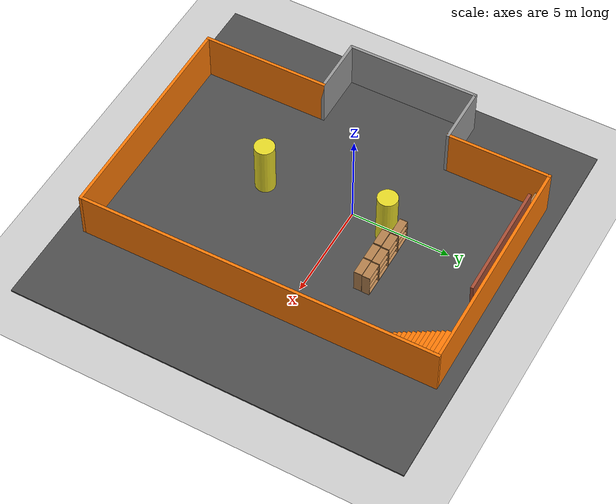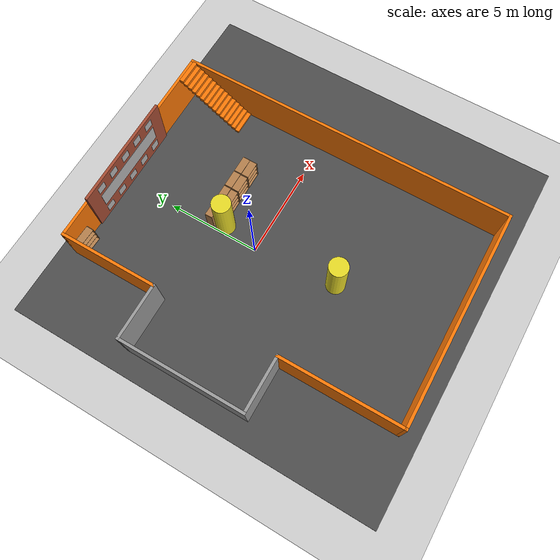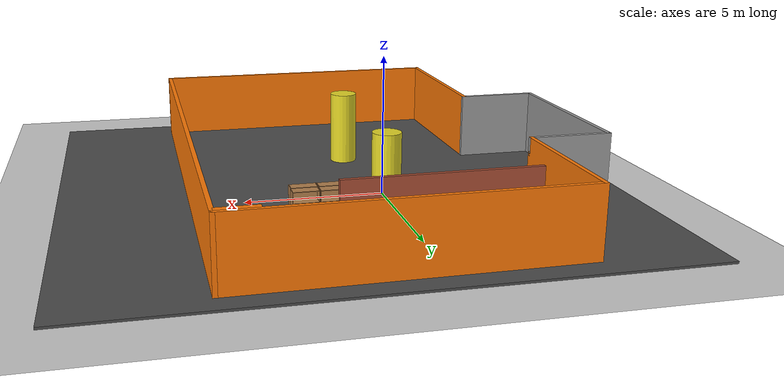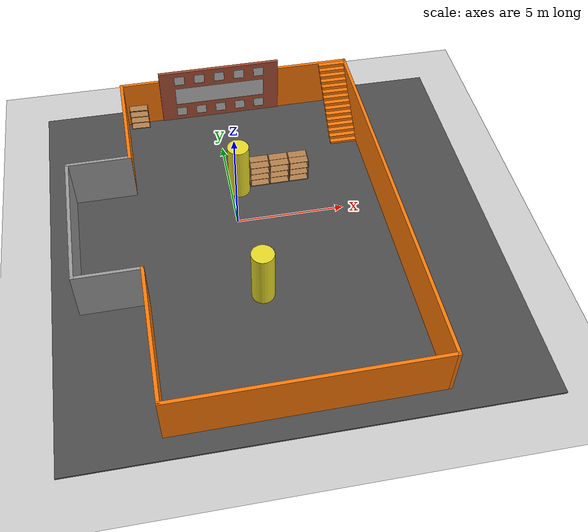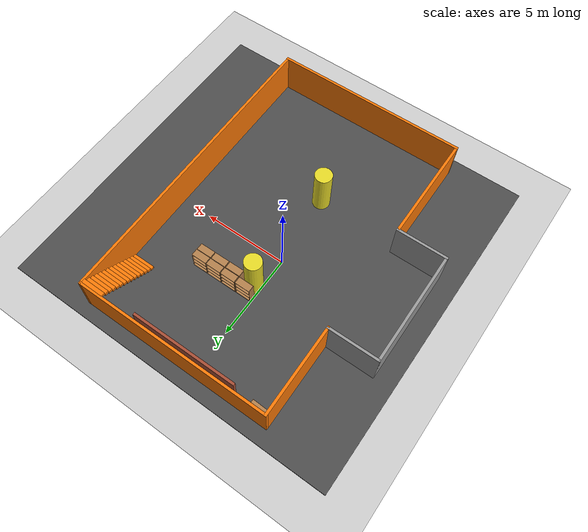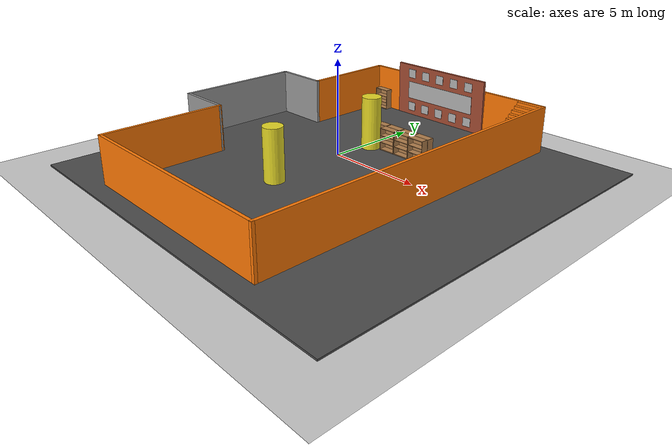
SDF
<sdf version="1.6">
 <world name="default">
  <model name="ground_plane">
   <static>1</static>
   <link name="link">
    <collision name="collision">
     <geometry><plane><normal>0 0 1</normal><size>100 100</size></plane></geometry>
     <surface>
      <contact><collide_bitmask>65535</collide_bitmask></contact>
      <friction><ode><mu>100</mu><mu2>50</mu2></ode></friction>
     </surface>
    </collision>
    <visual name="visual">
     <cast_shadows>0</cast_shadows>
     <geometry><plane><normal>0 0 1</normal><size>100 100</size></plane></geometry>
     <material>
      <script><uri>file://media/materials/scripts/gazebo.material</uri><name>Gazebo/Grey</name></script>
     </material>
    </visual>
   </link>
  </model>
  <model name="room">
   <pose>-0.256989 -1.30072 0 0 0 -1.56463</pose>
   <link name="Wall_0">
    <collision name="Wall_0_Collision">
     <geometry><box><size>3 0.15 2.5</size></box></geometry>
     <pose>0 0 1.25 0 -0 0</pose>
    </collision>
    <visual name="Wall_0_Visual">
     <pose>0 0 1.25 0 -0 0</pose>
     <geometry><box><size>3 0.15 2.5</size></box></geometry>
     <material>
      <script><uri>file://media/materials/scripts/gazebo.material</uri><name>Gazebo/Grey</name></script>
      <ambient>1 1 1 1</ambient>
     </material>
     <meta><layer>0</layer></meta>
    </visual>
    <pose>-3.9 -5.675 0 0 -0 -1.5708</pose>
   </link>
   <link name="Wall_1">
    <collision name="Wall_1_Collision">
     <geometry><box><size>6.75 0.15 2.5</size></box></geometry>
     <pose>0 0 1.25 0 -0 0</pose>
    </collision>
    <visual name="Wall_1_Visual">
     <pose>0 0 1.25 0 -0 0</pose>
     <geometry><box><size>6.75 0.15 2.5</size></box></geometry>
     <material>
      <script><uri>file://media/materials/scripts/gazebo.material</uri><name>Gazebo/Grey</name></script>
      <ambient>1 1 1 1</ambient>
     </material>
     <meta><layer>0</layer></meta>
    </visual>
    <pose>-0.6 -7.1 0 0 -0 0</pose>
   </link>
   <link name="Wall_2">
    <collision name="Wall_2_Collision">
     <geometry><box><size>3 0.15 2.5</size></box></geometry>
     <pose>0 0 1.25 0 -0 0</pose>
    </collision>
    <visual name="Wall_2_Visual">
     <pose>0 0 1.25 0 -0 0</pose>
     <geometry><box><size>3 0.15 2.5</size></box></geometry>
     <material>
      <script><uri>file://media/materials/scripts/gazebo.material</uri><name>Gazebo/Grey</name></script>
      <ambient>1 1 1 1</ambient>
     </material>
     <meta><layer>0</layer></meta>
    </visual>
    <pose>2.7 -5.675 0 0 -0 1.5708</pose>
   </link>
   <link name="Wall_3">
    <collision name="Wall_3_Collision">
     <geometry><box><size>6.5 0.15 2.5</size></box></geometry>
     <pose>0 0 1.25 0 -0 0</pose>
    </collision>
    <visual name="Wall_3_Visual">
     <pose>0 0 1.25 0 -0 0</pose>
     <geometry><box><size>6.5 0.15 2.5</size></box></geometry>
     <material>
      <script><uri>file://media/materials/scripts/gazebo.material</uri><name>Gazebo/Grey</name></script>
      <ambient>0.996078 0.47451 0.0196078 1</ambient>
     </material>
     <meta><layer>0</layer></meta>
    </visual>
    <pose>5.875 -4.25 0 0 -0 0</pose>
   </link>
   <link name="Wall_5">
    <collision name="Wall_5_Collision">
     <geometry><box><size>11.5 0.15 2.5</size></box></geometry>
     <pose>0 0 1.25 0 -0 0</pose>
    </collision>
    <visual name="Wall_5_Visual">
     <pose>0 0 1.25 0 -0 0</pose>
     <geometry><box><size>11.5 0.15 2.5</size></box></geometry>
     <material>
      <script><uri>file://media/materials/scripts/gazebo.material</uri><name>Gazebo/Grey</name></script>
      <ambient>0.996078 0.47451 0.0196078 1</ambient>
     </material>
     <meta><layer>0</layer></meta>
    </visual>
    <pose>9.05 1.425 0 0 -0 1.5708</pose>
   </link>
   <link name="Wall_6">
    <collision name="Wall_6_Collision">
     <geometry><box><size>18.25 0.15 2.5</size></box></geometry>
     <pose>0 0 1.25 0 -0 0</pose>
    </collision>
    <visual name="Wall_6_Visual">
     <pose>0 0 1.25 0 -0 0</pose>
     <geometry><box><size>18.25 0.15 2.5</size></box></geometry>
     <material>
      <script><uri>file://media/materials/scripts/gazebo.material</uri><name>Gazebo/Grey</name></script>
      <ambient>0.996078 0.47451 0.0196078 1</ambient>
     </material>
     <meta><layer>0</layer></meta>
    </visual>
    <pose>0 7.1 0 0 -0 3.14159</pose>
   </link>
   <link name="Wall_7">
    <collision name="Wall_7_Collision">
     <geometry><box><size>11.5 0.15 2.5</size></box></geometry>
     <pose>0 0 1.25 0 -0 0</pose>
    </collision>
    <visual name="Wall_7_Visual">
     <pose>0 0 1.25 0 -0 0</pose>
     <geometry><box><size>11.5 0.15 2.5</size></box></geometry>
     <material>
      <script><uri>file://media/materials/scripts/gazebo.material</uri><name>Gazebo/Grey</name></script>
      <ambient>0.996078 0.47451 0.0196078 1</ambient>
     </material>
     <meta><layer>0</layer></meta>
    </visual>
    <pose>-9.05 1.425 0 0 -0 -1.5708</pose>
   </link>
   <link name="Wall_8">
    <collision name="Wall_8_Collision">
     <geometry><box><size>5.3 0.15 2.5</size></box></geometry>
     <pose>0 0 1.25 0 -0 0</pose>
    </collision>
    <visual name="Wall_8_Visual">
     <pose>0 0 1.25 0 -0 0</pose>
     <geometry><box><size>5.3 0.15 2.5</size></box></geometry>
     <material>
      <script><uri>file://media/materials/scripts/gazebo.material</uri><name>Gazebo/Grey</name></script>
      <ambient>0.996078 0.47451 0.0196078 1</ambient>
     </material>
     <meta><layer>0</layer></meta>
    </visual>
    <pose>-6.475 -4.25 0 0 -0 0</pose>
   </link>
   <static>1</static>
  </model>
  <model name="wall_with_num">
   <pose>0.301724 7.62144 1.58055 -0.028957 -0.000253 -3.13441</pose>
   <static>1</static>
   <link name="wall_link">
    <inertial><mass>1</mass></inertial>
    <collision name="my_collision"><geometry><box><size>6 0.15 3</size></box></geometry></collision>
    <visual name="my_visual">
     <geometry><box><size>6 0.15 3</size></box></geometry>
     <material>
      <script><uri>file://media/materials/scripts/gazebo.material</uri><name>Gazebo/Bricks</name></script>
      <ambient>1 1 1 1</ambient>
     </material>
    </visual>
   </link>
   <link name="logo">
    <pose>-0 0.07 -0 0 -0 0</pose>
    <collision name="collision"><geometry><box><size>0.5 0.01 0.5</size></box></geometry></collision>
    <visual name="visual">
     <cast_shadows>0</cast_shadows>
     <geometry><box><size>4.5 0.03 1</size></box></geometry>
     <material>
      <script>
       <uri>model://logo_ground/materials/scripts</uri>
       <uri>model://logo_ground/materials/textures</uri>
       <name>Cube/logo_ground</name>
      </script>
     </material>
    </visual>
   </link>
   <link name="num_0">
    <pose>2 0.07 1 0 -0 0</pose>
    <collision name="collision"><geometry><box><size>0.5 0.01 0.5</size></box></geometry></collision>
    <visual name="visual">
     <cast_shadows>0</cast_shadows>
     <geometry><box><size>0.5 0.03 0.5</size></box></geometry>
     <material>
      <script>
       <uri>model://wall_with_num/materials/scripts/numbers.material</uri>
       <uri>model://wall_with_num/materials/textures/</uri>
       <name>Numbers/0</name>
      </script>
     </material>
    </visual>
   </link>
   <link name="num_1">
    <pose>1 0.07 1 0 -0 0</pose>
    <collision name="collision"><geometry><box><size>0.5 0.01 0.5</size></box></geometry></collision>
    <visual name="visual">
     <cast_shadows>0</cast_shadows>
     <geometry><box><size>0.5 0.03 0.5</size></box></geometry>
     <material>
      <script>
       <uri>model://wall_with_num/materials/scripts/numbers.material</uri>
       <uri>model://wall_with_num/materials/textures/</uri>
       <name>Numbers/1</name>
      </script>
     </material>
    </visual>
   </link>
   <link name="num_2">
    <pose>0 0.07 1 0 -0 0</pose>
    <collision name="collision"><geometry><box><size>0.5 0.01 0.5</size></box></geometry></collision>
    <visual name="visual">
     <cast_shadows>0</cast_shadows>
     <geometry><box><size>0.5 0.03 0.5</size></box></geometry>
     <material>
      <script>
       <uri>model://wall_with_num/materials/scripts/numbers.material</uri>
       <uri>model://wall_with_num/materials/textures/</uri>
       <name>Numbers/2</name>
      </script>
     </material>
    </visual>
   </link>
   <link name="num_3">
    <pose>-1 0.07 1 0 -0 0</pose>
    <collision name="collision"><geometry><box><size>0.5 0.01 0.5</size></box></geometry></collision>
    <visual name="visual">
     <cast_shadows>0</cast_shadows>
     <geometry><box><size>0.5 0.03 0.5</size></box></geometry>
     <material>
      <script>
       <uri>model://wall_with_num/materials/scripts/numbers.material</uri>
       <uri>model://wall_with_num/materials/textures/</uri>
       <name>Numbers/3</name>
      </script>
     </material>
    </visual>
   </link>
   <link name="num_4">
    <pose>-2 0.07 1 0 -0 0</pose>
    <collision name="collision"><geometry><box><size>0.5 0.01 0.5</size></box></geometry></collision>
    <visual name="visual">
     <cast_shadows>0</cast_shadows>
     <geometry><box><size>0.5 0.03 0.5</size></box></geometry>
     <material>
      <script>
       <uri>model://wall_with_num/materials/scripts/numbers.material</uri>
       <uri>model://wall_with_num/materials/textures/</uri>
       <name>Numbers/4</name>
      </script>
     </material>
    </visual>
   </link>
   <link name="num_5">
    <pose>2 0.07 -1 0 -0 0</pose>
    <collision name="collision"><geometry><box><size>0.5 0.01 0.5</size></box></geometry></collision>
    <visual name="visual">
     <cast_shadows>0</cast_shadows>
     <geometry><box><size>0.5 0.03 0.5</size></box></geometry>
     <material>
      <script>
       <uri>model://wall_with_num/materials/scripts/numbers.material</uri>
       <uri>model://wall_with_num/materials/textures/</uri>
       <name>Numbers/5</name>
      </script>
     </material>
    </visual>
   </link>
   <link name="num_6">
    <pose>1 0.07 -1 0 -0 0</pose>
    <collision name="collision"><geometry><box><size>0.5 0.01 0.5</size></box></geometry></collision>
    <visual name="visual">
     <cast_shadows>0</cast_shadows>
     <geometry><box><size>0.5 0.03 0.5</size></box></geometry>
     <material>
      <script>
       <uri>model://wall_with_num/materials/scripts/numbers.material</uri>
       <uri>model://wall_with_num/materials/textures/</uri>
       <name>Numbers/6</name>
      </script>
     </material>
    </visual>
   </link>
   <link name="num_7">
    <pose>0 0.07 -1 0 -0 0</pose>
    <collision name="collision"><geometry><box><size>0.5 0.01 0.5</size></box></geometry></collision>
    <visual name="visual">
     <cast_shadows>0</cast_shadows>
     <geometry><box><size>0.5 0.03 0.5</size></box></geometry>
     <material>
      <script>
       <uri>model://wall_with_num/materials/scripts/numbers.material</uri>
       <uri>model://wall_with_num/materials/textures/</uri>
       <name>Numbers/7</name>
      </script>
     </material>
    </visual>
   </link>
   <link name="num_8">
    <pose>-1 0.07 -1 0 -0 0</pose>
    <collision name="collision"><geometry><box><size>0.5 0.01 0.5</size></box></geometry></collision>
    <visual name="visual">
     <cast_shadows>0</cast_shadows>
     <geometry><box><size>0.5 0.03 0.5</size></box></geometry>
     <material>
      <script>
       <uri>model://wall_with_num/materials/scripts/numbers.material</uri>
       <uri>model://wall_with_num/materials/textures/</uri>
       <name>Numbers/8</name>
      </script>
     </material>
    </visual>
   </link>
   <link name="num_9">
    <pose>-2 0.07 -1 0 -0 0</pose>
    <collision name="collision"><geometry><box><size>0.5 0.01 0.5</size></box></geometry></collision>
    <visual name="visual">
     <cast_shadows>0</cast_shadows>
     <geometry><box><size>0.5 0.03 0.5</size></box></geometry>
     <material>
      <script>
       <uri>model://wall_with_num/materials/scripts/numbers.material</uri>
       <uri>model://wall_with_num/materials/textures/</uri>
       <name>Numbers/9</name>
      </script>
     </material>
    </visual>
   </link>
  </model>
  <model name="stone_10_2_5_1cm">
   <link name="link">
    <pose>0 0 0.005 0 -0 0</pose>
    <inertial>
     <mass>0.0628</mass>
     <inertia>
      <ixx>3.79417e-06</ixx>
      <ixy>0</ixy>
      <ixz>0</ixz>
      <iyy>5.28567e-05</iyy>
      <iyz>0</iyz>
      <izz>5.56042e-05</izz>
     </inertia>
    </inertial>
    <collision name="collision">
     <geometry><box><size>0.1 0.025 0.01</size></box></geometry>
     <surface>
      <contact>
       <poissons_ratio>0.15</poissons_ratio>
       <elastic_modulus>8e+10</elastic_modulus>
       <ode><kp>100000</kp><kd>100</kd><max_vel>100</max_vel><min_depth>0.001</min_depth></ode>
      </contact>
      <friction>
       <torsional>
        <coefficient>1</coefficient>
        <use_patch_radius>0</use_patch_radius>
        <surface_radius>0.01</surface_radius>
       </torsional>
      </friction>
     </surface>
    </collision>
    <visual name="visual">
     <geometry><box><size>0.1 0.025 0.01</size></box></geometry>
     <material>
      <script><uri>file://media/materials/scripts/gazebo.material</uri><name>Gazebo/Grey</name></script>
     </material>
    </visual>
   </link>
   <pose>0 0 -0.005 0 -0 0</pose>
  </model>
  <model name="bookshelf_clone_clone_1">
   <static>1</static>
   <link name="link">
    <inertial><mass>1</mass></inertial>
    <collision name="back">
     <pose>0 0.005 0.6 0 -0 0</pose>
     <geometry><box><size>0.9 0.01 1.2</size></box></geometry>
    </collision>
    <visual name="visual1">
     <pose>0 0.005 0.6 0 -0 0</pose>
     <geometry><box><size>0.9 0.01 1.2</size></box></geometry>
     <material>
      <script><uri>file://media/materials/scripts/gazebo.material</uri><name>Gazebo/Wood</name></script>
     </material>
    </visual>
    <collision name="left_side">
     <pose>0.45 -0.195 0.6 0 -0 0</pose>
     <geometry><box><size>0.02 0.4 1.2</size></box></geometry>
    </collision>
    <visual name="visual2">
     <pose>0.45 -0.195 0.6 0 -0 0</pose>
     <geometry><box><size>0.02 0.4 1.2</size></box></geometry>
     <material>
      <script><uri>file://media/materials/scripts/gazebo.material</uri><name>Gazebo/Wood</name></script>
     </material>
    </visual>
    <collision name="right_side">
     <pose>-0.45 -0.195 0.6 0 -0 0</pose>
     <geometry><box><size>0.02 0.4 1.2</size></box></geometry>
    </collision>
    <visual name="visual3">
     <pose>-0.45 -0.195 0.6 0 -0 0</pose>
     <geometry><box><size>0.02 0.4 1.2</size></box></geometry>
     <material>
      <script><uri>file://media/materials/scripts/gazebo.material</uri><name>Gazebo/Wood</name></script>
     </material>
    </visual>
    <collision name="bottom">
     <pose>0 -0.195 0.03 0 -0 0</pose>
     <geometry><box><size>0.88 0.4 0.06</size></box></geometry>
    </collision>
    <visual name="visual4">
     <pose>0 -0.195 0.03 0 -0 0</pose>
     <geometry><box><size>0.88 0.4 0.06</size></box></geometry>
     <material>
      <script><uri>file://media/materials/scripts/gazebo.material</uri><name>Gazebo/Wood</name></script>
     </material>
    </visual>
    <collision name="top">
     <pose>0 -0.195 1.19 0 -0 0</pose>
     <geometry><box><size>0.88 0.4 0.02</size></box></geometry>
    </collision>
    <visual name="visual5">
     <pose>0 -0.195 1.19 0 -0 0</pose>
     <geometry><box><size>0.88 0.4 0.02</size></box></geometry>
     <material>
      <script><uri>file://media/materials/scripts/gazebo.material</uri><name>Gazebo/Wood</name></script>
     </material>
    </visual>
    <collision name="low_shelf">
     <pose>0 -0.195 0.43 0 -0 0</pose>
     <geometry><box><size>0.88 0.4 0.02</size></box></geometry>
    </collision>
    <visual name="visual6">
     <pose>0 -0.195 0.43 0 -0 0</pose>
     <geometry><box><size>0.88 0.4 0.02</size></box></geometry>
     <material>
      <script><uri>file://media/materials/scripts/gazebo.material</uri><name>Gazebo/Wood</name></script>
     </material>
    </visual>
    <collision name="high_shelf">
     <pose>0 -0.195 0.8 0 -0 0</pose>
     <geometry><box><size>0.88 0.4 0.02</size></box></geometry>
    </collision>
    <visual name="visual7">
     <pose>0 -0.195 0.8 0 -0 0</pose>
     <geometry><box><size>0.88 0.4 0.02</size></box></geometry>
     <material>
      <script><uri>file://media/materials/scripts/gazebo.material</uri><name>Gazebo/Wood</name></script>
     </material>
    </visual>
   </link>
   <pose>-3.87786 7.61269 0.027497 0 0 -0.028777</pose>
  </model>
  <model name="bookshelf_clone_clone_clone_0">
   <static>1</static>
   <link name="link">
    <inertial><mass>1</mass></inertial>
    <collision name="back">
     <pose>0 0.005 0.6 0 -0 0</pose>
     <geometry><box><size>0.9 0.01 1.2</size></box></geometry>
    </collision>
    <visual name="visual1">
     <pose>0 0.005 0.6 0 -0 0</pose>
     <geometry><box><size>0.9 0.01 1.2</size></box></geometry>
     <material>
      <script><uri>file://media/materials/scripts/gazebo.material</uri><name>Gazebo/Wood</name></script>
     </material>
    </visual>
    <collision name="left_side">
     <pose>0.45 -0.195 0.6 0 -0 0</pose>
     <geometry><box><size>0.02 0.4 1.2</size></box></geometry>
    </collision>
    <visual name="visual2">
     <pose>0.45 -0.195 0.6 0 -0 0</pose>
     <geometry><box><size>0.02 0.4 1.2</size></box></geometry>
     <material>
      <script><uri>file://media/materials/scripts/gazebo.material</uri><name>Gazebo/Wood</name></script>
     </material>
    </visual>
    <collision name="right_side">
     <pose>-0.45 -0.195 0.6 0 -0 0</pose>
     <geometry><box><size>0.02 0.4 1.2</size></box></geometry>
    </collision>
    <visual name="visual3">
     <pose>-0.45 -0.195 0.6 0 -0 0</pose>
     <geometry><box><size>0.02 0.4 1.2</size></box></geometry>
     <material>
      <script><uri>file://media/materials/scripts/gazebo.material</uri><name>Gazebo/Wood</name></script>
     </material>
    </visual>
    <collision name="bottom">
     <pose>0 -0.195 0.03 0 -0 0</pose>
     <geometry><box><size>0.88 0.4 0.06</size></box></geometry>
    </collision>
    <visual name="visual4">
     <pose>0 -0.195 0.03 0 -0 0</pose>
     <geometry><box><size>0.88 0.4 0.06</size></box></geometry>
     <material>
      <script><uri>file://media/materials/scripts/gazebo.material</uri><name>Gazebo/Wood</name></script>
     </material>
    </visual>
    <collision name="top">
     <pose>0 -0.195 1.19 0 -0 0</pose>
     <geometry><box><size>0.88 0.4 0.02</size></box></geometry>
    </collision>
    <visual name="visual5">
     <pose>0 -0.195 1.19 0 -0 0</pose>
     <geometry><box><size>0.88 0.4 0.02</size></box></geometry>
     <material>
      <script><uri>file://media/materials/scripts/gazebo.material</uri><name>Gazebo/Wood</name></script>
     </material>
    </visual>
    <collision name="low_shelf">
     <pose>0 -0.195 0.43 0 -0 0</pose>
     <geometry><box><size>0.88 0.4 0.02</size></box></geometry>
    </collision>
    <visual name="visual6">
     <pose>0 -0.195 0.43 0 -0 0</pose>
     <geometry><box><size>0.88 0.4 0.02</size></box></geometry>
     <material>
      <script><uri>file://media/materials/scripts/gazebo.material</uri><name>Gazebo/Wood</name></script>
     </material>
    </visual>
    <collision name="high_shelf">
     <pose>0 -0.195 0.8 0 -0 0</pose>
     <geometry><box><size>0.88 0.4 0.02</size></box></geometry>
    </collision>
    <visual name="visual7">
     <pose>0 -0.195 0.8 0 -0 0</pose>
     <geometry><box><size>0.88 0.4 0.02</size></box></geometry>
     <material>
      <script><uri>file://media/materials/scripts/gazebo.material</uri><name>Gazebo/Wood</name></script>
     </material>
    </visual>
   </link>
   <pose>0.506573 2.48359 0.027497 0 0 -3.13702</pose>
  </model>
  <model name="bookshelf_clone_clone_clone_1">
   <static>1</static>
   <link name="link">
    <inertial><mass>1</mass></inertial>
    <collision name="back">
     <pose>0 0.005 0.6 0 -0 0</pose>
     <geometry><box><size>0.9 0.01 1.2</size></box></geometry>
    </collision>
    <visual name="visual1">
     <pose>0 0.005 0.6 0 -0 0</pose>
     <geometry><box><size>0.9 0.01 1.2</size></box></geometry>
     <material>
      <script><uri>file://media/materials/scripts/gazebo.material</uri><name>Gazebo/Wood</name></script>
     </material>
    </visual>
    <collision name="left_side">
     <pose>0.45 -0.195 0.6 0 -0 0</pose>
     <geometry><box><size>0.02 0.4 1.2</size></box></geometry>
    </collision>
    <visual name="visual2">
     <pose>0.45 -0.195 0.6 0 -0 0</pose>
     <geometry><box><size>0.02 0.4 1.2</size></box></geometry>
     <material>
      <script><uri>file://media/materials/scripts/gazebo.material</uri><name>Gazebo/Wood</name></script>
     </material>
    </visual>
    <collision name="right_side">
     <pose>-0.45 -0.195 0.6 0 -0 0</pose>
     <geometry><box><size>0.02 0.4 1.2</size></box></geometry>
    </collision>
    <visual name="visual3">
     <pose>-0.45 -0.195 0.6 0 -0 0</pose>
     <geometry><box><size>0.02 0.4 1.2</size></box></geometry>
     <material>
      <script><uri>file://media/materials/scripts/gazebo.material</uri><name>Gazebo/Wood</name></script>
     </material>
    </visual>
    <collision name="bottom">
     <pose>0 -0.195 0.03 0 -0 0</pose>
     <geometry><box><size>0.88 0.4 0.06</size></box></geometry>
    </collision>
    <visual name="visual4">
     <pose>0 -0.195 0.03 0 -0 0</pose>
     <geometry><box><size>0.88 0.4 0.06</size></box></geometry>
     <material>
      <script><uri>file://media/materials/scripts/gazebo.material</uri><name>Gazebo/Wood</name></script>
     </material>
    </visual>
    <collision name="top">
     <pose>0 -0.195 1.19 0 -0 0</pose>
     <geometry><box><size>0.88 0.4 0.02</size></box></geometry>
    </collision>
    <visual name="visual5">
     <pose>0 -0.195 1.19 0 -0 0</pose>
     <geometry><box><size>0.88 0.4 0.02</size></box></geometry>
     <material>
      <script><uri>file://media/materials/scripts/gazebo.material</uri><name>Gazebo/Wood</name></script>
     </material>
    </visual>
    <collision name="low_shelf">
     <pose>0 -0.195 0.43 0 -0 0</pose>
     <geometry><box><size>0.88 0.4 0.02</size></box></geometry>
    </collision>
    <visual name="visual6">
     <pose>0 -0.195 0.43 0 -0 0</pose>
     <geometry><box><size>0.88 0.4 0.02</size></box></geometry>
     <material>
      <script><uri>file://media/materials/scripts/gazebo.material</uri><name>Gazebo/Wood</name></script>
     </material>
    </visual>
    <collision name="high_shelf">
     <pose>0 -0.195 0.8 0 -0 0</pose>
     <geometry><box><size>0.88 0.4 0.02</size></box></geometry>
    </collision>
    <visual name="visual7">
     <pose>0 -0.195 0.8 0 -0 0</pose>
     <geometry><box><size>0.88 0.4 0.02</size></box></geometry>
     <material>
      <script><uri>file://media/materials/scripts/gazebo.material</uri><name>Gazebo/Wood</name></script>
     </material>
    </visual>
   </link>
   <pose>3.3308 2.50364 0.027497 0 0 -3.13702</pose>
  </model>
  <model name="bookshelf_clone_clone_clone_1_clone">
   <static>1</static>
   <link name="link">
    <inertial><mass>1</mass></inertial>
    <collision name="back">
     <pose>0 0.005 0.6 0 -0 0</pose>
     <geometry><box><size>0.9 0.01 1.2</size></box></geometry>
    </collision>
    <visual name="visual1">
     <pose>0 0.005 0.6 0 -0 0</pose>
     <geometry><box><size>0.9 0.01 1.2</size></box></geometry>
     <material>
      <script><uri>file://media/materials/scripts/gazebo.material</uri><name>Gazebo/Wood</name></script>
     </material>
    </visual>
    <collision name="left_side">
     <pose>0.45 -0.195 0.6 0 -0 0</pose>
     <geometry><box><size>0.02 0.4 1.2</size></box></geometry>
    </collision>
    <visual name="visual2">
     <pose>0.45 -0.195 0.6 0 -0 0</pose>
     <geometry><box><size>0.02 0.4 1.2</size></box></geometry>
     <material>
      <script><uri>file://media/materials/scripts/gazebo.material</uri><name>Gazebo/Wood</name></script>
     </material>
    </visual>
    <collision name="right_side">
     <pose>-0.45 -0.195 0.6 0 -0 0</pose>
     <geometry><box><size>0.02 0.4 1.2</size></box></geometry>
    </collision>
    <visual name="visual3">
     <pose>-0.45 -0.195 0.6 0 -0 0</pose>
     <geometry><box><size>0.02 0.4 1.2</size></box></geometry>
     <material>
      <script><uri>file://media/materials/scripts/gazebo.material</uri><name>Gazebo/Wood</name></script>
     </material>
    </visual>
    <collision name="bottom">
     <pose>0 -0.195 0.03 0 -0 0</pose>
     <geometry><box><size>0.88 0.4 0.06</size></box></geometry>
    </collision>
    <visual name="visual4">
     <pose>0 -0.195 0.03 0 -0 0</pose>
     <geometry><box><size>0.88 0.4 0.06</size></box></geometry>
     <material>
      <script><uri>file://media/materials/scripts/gazebo.material</uri><name>Gazebo/Wood</name></script>
     </material>
    </visual>
    <collision name="top">
     <pose>0 -0.195 1.19 0 -0 0</pose>
     <geometry><box><size>0.88 0.4 0.02</size></box></geometry>
    </collision>
    <visual name="visual5">
     <pose>0 -0.195 1.19 0 -0 0</pose>
     <geometry><box><size>0.88 0.4 0.02</size></box></geometry>
     <material>
      <script><uri>file://media/materials/scripts/gazebo.material</uri><name>Gazebo/Wood</name></script>
     </material>
    </visual>
    <collision name="low_shelf">
     <pose>0 -0.195 0.43 0 -0 0</pose>
     <geometry><box><size>0.88 0.4 0.02</size></box></geometry>
    </collision>
    <visual name="visual6">
     <pose>0 -0.195 0.43 0 -0 0</pose>
     <geometry><box><size>0.88 0.4 0.02</size></box></geometry>
     <material>
      <script><uri>file://media/materials/scripts/gazebo.material</uri><name>Gazebo/Wood</name></script>
     </material>
    </visual>
    <collision name="high_shelf">
     <pose>0 -0.195 0.8 0 -0 0</pose>
     <geometry><box><size>0.88 0.4 0.02</size></box></geometry>
    </collision>
    <visual name="visual7">
     <pose>0 -0.195 0.8 0 -0 0</pose>
     <geometry><box><size>0.88 0.4 0.02</size></box></geometry>
     <material>
      <script><uri>file://media/materials/scripts/gazebo.material</uri><name>Gazebo/Wood</name></script>
     </material>
    </visual>
   </link>
   <pose>2.39819 2.50195 0.027497 0 0 -3.13702</pose>
  </model>
  <model name="bookshelf_clone_clone_clone_1_clone_0">
   <static>1</static>
   <link name="link">
    <inertial><mass>1</mass></inertial>
    <collision name="back">
     <pose>0 0.005 0.6 0 -0 0</pose>
     <geometry><box><size>0.9 0.01 1.2</size></box></geometry>
    </collision>
    <visual name="visual1">
     <pose>0 0.005 0.6 0 -0 0</pose>
     <geometry><box><size>0.9 0.01 1.2</size></box></geometry>
     <material>
      <script><uri>file://media/materials/scripts/gazebo.material</uri><name>Gazebo/Wood</name></script>
     </material>
    </visual>
    <collision name="left_side">
     <pose>0.45 -0.195 0.6 0 -0 0</pose>
     <geometry><box><size>0.02 0.4 1.2</size></box></geometry>
    </collision>
    <visual name="visual2">
     <pose>0.45 -0.195 0.6 0 -0 0</pose>
     <geometry><box><size>0.02 0.4 1.2</size></box></geometry>
     <material>
      <script><uri>file://media/materials/scripts/gazebo.material</uri><name>Gazebo/Wood</name></script>
     </material>
    </visual>
    <collision name="right_side">
     <pose>-0.45 -0.195 0.6 0 -0 0</pose>
     <geometry><box><size>0.02 0.4 1.2</size></box></geometry>
    </collision>
    <visual name="visual3">
     <pose>-0.45 -0.195 0.6 0 -0 0</pose>
     <geometry><box><size>0.02 0.4 1.2</size></box></geometry>
     <material>
      <script><uri>file://media/materials/scripts/gazebo.material</uri><name>Gazebo/Wood</name></script>
     </material>
    </visual>
    <collision name="bottom">
     <pose>0 -0.195 0.03 0 -0 0</pose>
     <geometry><box><size>0.88 0.4 0.06</size></box></geometry>
    </collision>
    <visual name="visual4">
     <pose>0 -0.195 0.03 0 -0 0</pose>
     <geometry><box><size>0.88 0.4 0.06</size></box></geometry>
     <material>
      <script><uri>file://media/materials/scripts/gazebo.material</uri><name>Gazebo/Wood</name></script>
     </material>
    </visual>
    <collision name="top">
     <pose>0 -0.195 1.19 0 -0 0</pose>
     <geometry><box><size>0.88 0.4 0.02</size></box></geometry>
    </collision>
    <visual name="visual5">
     <pose>0 -0.195 1.19 0 -0 0</pose>
     <geometry><box><size>0.88 0.4 0.02</size></box></geometry>
     <material>
      <script><uri>file://media/materials/scripts/gazebo.material</uri><name>Gazebo/Wood</name></script>
     </material>
    </visual>
    <collision name="low_shelf">
     <pose>0 -0.195 0.43 0 -0 0</pose>
     <geometry><box><size>0.88 0.4 0.02</size></box></geometry>
    </collision>
    <visual name="visual6">
     <pose>0 -0.195 0.43 0 -0 0</pose>
     <geometry><box><size>0.88 0.4 0.02</size></box></geometry>
     <material>
      <script><uri>file://media/materials/scripts/gazebo.material</uri><name>Gazebo/Wood</name></script>
     </material>
    </visual>
    <collision name="high_shelf">
     <pose>0 -0.195 0.8 0 -0 0</pose>
     <geometry><box><size>0.88 0.4 0.02</size></box></geometry>
    </collision>
    <visual name="visual7">
     <pose>0 -0.195 0.8 0 -0 0</pose>
     <geometry><box><size>0.88 0.4 0.02</size></box></geometry>
     <material>
      <script><uri>file://media/materials/scripts/gazebo.material</uri><name>Gazebo/Wood</name></script>
     </material>
    </visual>
   </link>
   <pose>1.45858 2.49512 0.027497 0 0 -3.13702</pose>
  </model>
  <model name="asphalt_plane">
   <static>1</static>
   <link name="link">
    <collision name="collision"><geometry><box><size>20 20 0.1</size></box></geometry></collision>
    <visual name="visual">
     <cast_shadows>0</cast_shadows>
     <geometry><box><size>20 20 0.1</size></box></geometry>
     <material>
      <script>
       <uri>model://asphalt_plane/materials/scripts</uri>
       <uri>model://asphalt_plane/materials/textures</uri>
       <name>vrc/asphalt</name>
      </script>
     </material>
    </visual>
   </link>
   <pose>1.41654 -1.37423 0 0 -0 0</pose>
  </model>
  <model name="pillar_m_clone">
   <link name="link">
    <inertial>
     <mass>1000</mass>
     <inertia><ixx>1</ixx><ixy>0</ixy><ixz>0</ixz><iyy>1</iyy><iyz>0</iyz><izz>1</izz></inertia>
    </inertial>
    <visual name="visual">
     <geometry><cylinder><radius>0.5</radius><length>3.5</length></cylinder></geometry>
     <material>
      <script><name>Gazebo/Yellow</name><uri>file://media/materials/scripts/gazebo.material</uri></script>
      <shader type="pixel"><normal_map>__default__</normal_map></shader>
      <ambient>0.988 0.914 0.31 1</ambient>
      <diffuse>0.7 0.7 0.7 1</diffuse>
      <specular>0.01 0.01 0.01 1</specular>
      <emissive>0 0 0 1</emissive>
     </material>
    </visual>
    <collision name="collision">
     <geometry><cylinder><radius>0.5</radius><length>3.5</length></cylinder></geometry>
    </collision>
   </link>
   <static>0</static>
   <pose>0.403513 1.97514 1.06339 0 -0 0</pose>
  </model>
  <model name="pillar_m_clone_clone">
   <link name="link">
    <inertial>
     <mass>1000</mass>
     <inertia><ixx>1</ixx><ixy>0</ixy><ixz>0</ixz><iyy>1</iyy><iyz>0</iyz><izz>1</izz></inertia>
    </inertial>
    <visual name="visual">
     <geometry><cylinder><radius>0.5</radius><length>3.5</length></cylinder></geometry>
     <material>
      <script><name>Gazebo/Yellow</name><uri>file://media/materials/scripts/gazebo.material</uri></script>
      <shader type="pixel"><normal_map>__default__</normal_map></shader>
      <ambient>0.988 0.914 0.31 1</ambient>
      <diffuse>0.7 0.7 0.7 1</diffuse>
      <specular>0.01 0.01 0.01 1</specular>
      <emissive>0 0 0 1</emissive>
     </material>
    </visual>
    <collision name="collision">
     <geometry><cylinder><radius>0.5</radius><length>3.5</length></cylinder></geometry>
    </collision>
   </link>
   <static>0</static>
   <pose>0.427818 -4.42846 1.01814 0 -0 0</pose>
  </model>
  <model name="bookshelf_clone_clone_clone">
   <static>1</static>
   <link name="link">
    <inertial><mass>1</mass></inertial>
    <collision name="back">
     <pose>0 0.005 0.6 0 -0 0</pose>
     <geometry><box><size>0.9 0.01 1.2</size></box></geometry>
    </collision>
    <visual name="visual1">
     <pose>0 0.005 0.6 0 -0 0</pose>
     <geometry><box><size>0.9 0.01 1.2</size></box></geometry>
     <material>
      <script><uri>file://media/materials/scripts/gazebo.material</uri><name>Gazebo/Wood</name></script>
     </material>
    </visual>
    <collision name="left_side">
     <pose>0.45 -0.195 0.6 0 -0 0</pose>
     <geometry><box><size>0.02 0.4 1.2</size></box></geometry>
    </collision>
    <visual name="visual2">
     <pose>0.45 -0.195 0.6 0 -0 0</pose>
     <geometry><box><size>0.02 0.4 1.2</size></box></geometry>
     <material>
      <script><uri>file://media/materials/scripts/gazebo.material</uri><name>Gazebo/Wood</name></script>
     </material>
    </visual>
    <collision name="right_side">
     <pose>-0.45 -0.195 0.6 0 -0 0</pose>
     <geometry><box><size>0.02 0.4 1.2</size></box></geometry>
    </collision>
    <visual name="visual3">
     <pose>-0.45 -0.195 0.6 0 -0 0</pose>
     <geometry><box><size>0.02 0.4 1.2</size></box></geometry>
     <material>
      <script><uri>file://media/materials/scripts/gazebo.material</uri><name>Gazebo/Wood</name></script>
     </material>
    </visual>
    <collision name="bottom">
     <pose>0 -0.195 0.03 0 -0 0</pose>
     <geometry><box><size>0.88 0.4 0.06</size></box></geometry>
    </collision>
    <visual name="visual4">
     <pose>0 -0.195 0.03 0 -0 0</pose>
     <geometry><box><size>0.88 0.4 0.06</size></box></geometry>
     <material>
      <script><uri>file://media/materials/scripts/gazebo.material</uri><name>Gazebo/Wood</name></script>
     </material>
    </visual>
    <collision name="top">
     <pose>0 -0.195 1.19 0 -0 0</pose>
     <geometry><box><size>0.88 0.4 0.02</size></box></geometry>
    </collision>
    <visual name="visual5">
     <pose>0 -0.195 1.19 0 -0 0</pose>
     <geometry><box><size>0.88 0.4 0.02</size></box></geometry>
     <material>
      <script><uri>file://media/materials/scripts/gazebo.material</uri><name>Gazebo/Wood</name></script>
     </material>
    </visual>
    <collision name="low_shelf">
     <pose>0 -0.195 0.43 0 -0 0</pose>
     <geometry><box><size>0.88 0.4 0.02</size></box></geometry>
    </collision>
    <visual name="visual6">
     <pose>0 -0.195 0.43 0 -0 0</pose>
     <geometry><box><size>0.88 0.4 0.02</size></box></geometry>
     <material>
      <script><uri>file://media/materials/scripts/gazebo.material</uri><name>Gazebo/Wood</name></script>
     </material>
    </visual>
    <collision name="high_shelf">
     <pose>0 -0.195 0.8 0 -0 0</pose>
     <geometry><box><size>0.88 0.4 0.02</size></box></geometry>
    </collision>
    <visual name="visual7">
     <pose>0 -0.195 0.8 0 -0 0</pose>
     <geometry><box><size>0.88 0.4 0.02</size></box></geometry>
     <material>
      <script><uri>file://media/materials/scripts/gazebo.material</uri><name>Gazebo/Wood</name></script>
     </material>
    </visual>
   </link>
   <pose>3.31678 2.4756 0.037852 0 -0 0.010513</pose>
  </model>
  <model name="bookshelf_clone_clone_clone_clone">
   <static>1</static>
   <link name="link">
    <inertial><mass>1</mass></inertial>
    <collision name="back">
     <pose>0 0.005 0.6 0 -0 0</pose>
     <geometry><box><size>0.9 0.01 1.2</size></box></geometry>
    </collision>
    <visual name="visual1">
     <pose>0 0.005 0.6 0 -0 0</pose>
     <geometry><box><size>0.9 0.01 1.2</size></box></geometry>
     <material>
      <script><uri>file://media/materials/scripts/gazebo.material</uri><name>Gazebo/Wood</name></script>
     </material>
    </visual>
    <collision name="left_side">
     <pose>0.45 -0.195 0.6 0 -0 0</pose>
     <geometry><box><size>0.02 0.4 1.2</size></box></geometry>
    </collision>
    <visual name="visual2">
     <pose>0.45 -0.195 0.6 0 -0 0</pose>
     <geometry><box><size>0.02 0.4 1.2</size></box></geometry>
     <material>
      <script><uri>file://media/materials/scripts/gazebo.material</uri><name>Gazebo/Wood</name></script>
     </material>
    </visual>
    <collision name="right_side">
     <pose>-0.45 -0.195 0.6 0 -0 0</pose>
     <geometry><box><size>0.02 0.4 1.2</size></box></geometry>
    </collision>
    <visual name="visual3">
     <pose>-0.45 -0.195 0.6 0 -0 0</pose>
     <geometry><box><size>0.02 0.4 1.2</size></box></geometry>
     <material>
      <script><uri>file://media/materials/scripts/gazebo.material</uri><name>Gazebo/Wood</name></script>
     </material>
    </visual>
    <collision name="bottom">
     <pose>0 -0.195 0.03 0 -0 0</pose>
     <geometry><box><size>0.88 0.4 0.06</size></box></geometry>
    </collision>
    <visual name="visual4">
     <pose>0 -0.195 0.03 0 -0 0</pose>
     <geometry><box><size>0.88 0.4 0.06</size></box></geometry>
     <material>
      <script><uri>file://media/materials/scripts/gazebo.material</uri><name>Gazebo/Wood</name></script>
     </material>
    </visual>
    <collision name="top">
     <pose>0 -0.195 1.19 0 -0 0</pose>
     <geometry><box><size>0.88 0.4 0.02</size></box></geometry>
    </collision>
    <visual name="visual5">
     <pose>0 -0.195 1.19 0 -0 0</pose>
     <geometry><box><size>0.88 0.4 0.02</size></box></geometry>
     <material>
      <script><uri>file://media/materials/scripts/gazebo.material</uri><name>Gazebo/Wood</name></script>
     </material>
    </visual>
    <collision name="low_shelf">
     <pose>0 -0.195 0.43 0 -0 0</pose>
     <geometry><box><size>0.88 0.4 0.02</size></box></geometry>
    </collision>
    <visual name="visual6">
     <pose>0 -0.195 0.43 0 -0 0</pose>
     <geometry><box><size>0.88 0.4 0.02</size></box></geometry>
     <material>
      <script><uri>file://media/materials/scripts/gazebo.material</uri><name>Gazebo/Wood</name></script>
     </material>
    </visual>
    <collision name="high_shelf">
     <pose>0 -0.195 0.8 0 -0 0</pose>
     <geometry><box><size>0.88 0.4 0.02</size></box></geometry>
    </collision>
    <visual name="visual7">
     <pose>0 -0.195 0.8 0 -0 0</pose>
     <geometry><box><size>0.88 0.4 0.02</size></box></geometry>
     <material>
      <script><uri>file://media/materials/scripts/gazebo.material</uri><name>Gazebo/Wood</name></script>
     </material>
    </visual>
   </link>
   <pose>2.38002 2.47138 0.037852 0 -0 0.010513</pose>
  </model>
  <model name="bookshelf_clone_clone_clone_clone_clone">
   <static>1</static>
   <link name="link">
    <inertial><mass>1</mass></inertial>
    <collision name="back">
     <pose>0 0.005 0.6 0 -0 0</pose>
     <geometry><box><size>0.9 0.01 1.2</size></box></geometry>
    </collision>
    <visual name="visual1">
     <pose>0 0.005 0.6 0 -0 0</pose>
     <geometry><box><size>0.9 0.01 1.2</size></box></geometry>
     <material>
      <script><uri>file://media/materials/scripts/gazebo.material</uri><name>Gazebo/Wood</name></script>
     </material>
    </visual>
    <collision name="left_side">
     <pose>0.45 -0.195 0.6 0 -0 0</pose>
     <geometry><box><size>0.02 0.4 1.2</size></box></geometry>
    </collision>
    <visual name="visual2">
     <pose>0.45 -0.195 0.6 0 -0 0</pose>
     <geometry><box><size>0.02 0.4 1.2</size></box></geometry>
     <material>
      <script><uri>file://media/materials/scripts/gazebo.material</uri><name>Gazebo/Wood</name></script>
     </material>
    </visual>
    <collision name="right_side">
     <pose>-0.45 -0.195 0.6 0 -0 0</pose>
     <geometry><box><size>0.02 0.4 1.2</size></box></geometry>
    </collision>
    <visual name="visual3">
     <pose>-0.45 -0.195 0.6 0 -0 0</pose>
     <geometry><box><size>0.02 0.4 1.2</size></box></geometry>
     <material>
      <script><uri>file://media/materials/scripts/gazebo.material</uri><name>Gazebo/Wood</name></script>
     </material>
    </visual>
    <collision name="bottom">
     <pose>0 -0.195 0.03 0 -0 0</pose>
     <geometry><box><size>0.88 0.4 0.06</size></box></geometry>
    </collision>
    <visual name="visual4">
     <pose>0 -0.195 0.03 0 -0 0</pose>
     <geometry><box><size>0.88 0.4 0.06</size></box></geometry>
     <material>
      <script><uri>file://media/materials/scripts/gazebo.material</uri><name>Gazebo/Wood</name></script>
     </material>
    </visual>
    <collision name="top">
     <pose>0 -0.195 1.19 0 -0 0</pose>
     <geometry><box><size>0.88 0.4 0.02</size></box></geometry>
    </collision>
    <visual name="visual5">
     <pose>0 -0.195 1.19 0 -0 0</pose>
     <geometry><box><size>0.88 0.4 0.02</size></box></geometry>
     <material>
      <script><uri>file://media/materials/scripts/gazebo.material</uri><name>Gazebo/Wood</name></script>
     </material>
    </visual>
    <collision name="low_shelf">
     <pose>0 -0.195 0.43 0 -0 0</pose>
     <geometry><box><size>0.88 0.4 0.02</size></box></geometry>
    </collision>
    <visual name="visual6">
     <pose>0 -0.195 0.43 0 -0 0</pose>
     <geometry><box><size>0.88 0.4 0.02</size></box></geometry>
     <material>
      <script><uri>file://media/materials/scripts/gazebo.material</uri><name>Gazebo/Wood</name></script>
     </material>
    </visual>
    <collision name="high_shelf">
     <pose>0 -0.195 0.8 0 -0 0</pose>
     <geometry><box><size>0.88 0.4 0.02</size></box></geometry>
    </collision>
    <visual name="visual7">
     <pose>0 -0.195 0.8 0 -0 0</pose>
     <geometry><box><size>0.88 0.4 0.02</size></box></geometry>
     <material>
      <script><uri>file://media/materials/scripts/gazebo.material</uri><name>Gazebo/Wood</name></script>
     </material>
    </visual>
   </link>
   <pose>1.43231 2.45878 0.037852 0 -0 0.010513</pose>
  </model>
  <model name="Untitled_0">
   <pose>6.09283 6.01953 0 0 -0 0</pose>
   <link name="Stairs_1">
    <visual name="Stairs_1_Visual_0">
     <pose>0 -1.59433 0.083333 0 -0 -3.14159</pose>
     <geometry><box><size>1.332 0.227762 0.166667</size></box></geometry>
     <material>
      <script><uri>file://media/materials/scripts/gazebo.material</uri><name>Gazebo/Grey</name></script>
      <ambient>0.996078 0.47451 0.0196078 1</ambient>
     </material>
     <meta><layer>0</layer></meta>
    </visual>
    <collision name="Stairs_1_Collision_0">
     <geometry><box><size>1.332 0.227762 0.166667</size></box></geometry>
     <pose>0 -1.59433 0.083333 0 -0 -3.14159</pose>
    </collision>
    <visual name="Stairs_1_Visual_1">
     <pose>0 -1.36657 0.25 0 -0 -3.14159</pose>
     <geometry><box><size>1.332 0.227762 0.166667</size></box></geometry>
     <material>
      <script><uri>file://media/materials/scripts/gazebo.material</uri><name>Gazebo/Grey</name></script>
      <ambient>0.996078 0.47451 0.0196078 1</ambient>
     </material>
     <meta><layer>0</layer></meta>
    </visual>
    <collision name="Stairs_1_Collision_1">
     <geometry><box><size>1.332 0.227762 0.166667</size></box></geometry>
     <pose>0 -1.36657 0.25 0 -0 -3.14159</pose>
    </collision>
    <visual name="Stairs_1_Visual_2">
     <pose>0 -1.13881 0.416667 0 -0 -3.14159</pose>
     <geometry><box><size>1.332 0.227762 0.166667</size></box></geometry>
     <material>
      <script><uri>file://media/materials/scripts/gazebo.material</uri><name>Gazebo/Grey</name></script>
      <ambient>0.996078 0.47451 0.0196078 1</ambient>
     </material>
     <meta><layer>0</layer></meta>
    </visual>
    <collision name="Stairs_1_Collision_2">
     <geometry><box><size>1.332 0.227762 0.166667</size></box></geometry>
     <pose>0 -1.13881 0.416667 0 -0 -3.14159</pose>
    </collision>
    <visual name="Stairs_1_Visual_3">
     <pose>0 -0.911047 0.583333 0 -0 -3.14159</pose>
     <geometry><box><size>1.332 0.227762 0.166667</size></box></geometry>
     <material>
      <script><uri>file://media/materials/scripts/gazebo.material</uri><name>Gazebo/Grey</name></script>
      <ambient>0.996078 0.47451 0.0196078 1</ambient>
     </material>
     <meta><layer>0</layer></meta>
    </visual>
    <collision name="Stairs_1_Collision_3">
     <geometry><box><size>1.332 0.227762 0.166667</size></box></geometry>
     <pose>0 -0.911047 0.583333 0 -0 -3.14159</pose>
    </collision>
    <visual name="Stairs_1_Visual_4">
     <pose>0 -0.683285 0.75 0 -0 -3.14159</pose>
     <geometry><box><size>1.332 0.227762 0.166667</size></box></geometry>
     <material>
      <script><uri>file://media/materials/scripts/gazebo.material</uri><name>Gazebo/Grey</name></script>
      <ambient>0.996078 0.47451 0.0196078 1</ambient>
     </material>
     <meta><layer>0</layer></meta>
    </visual>
    <collision name="Stairs_1_Collision_4">
     <geometry><box><size>1.332 0.227762 0.166667</size></box></geometry>
     <pose>0 -0.683285 0.75 0 -0 -3.14159</pose>
    </collision>
    <visual name="Stairs_1_Visual_5">
     <pose>0 -0.455523 0.916667 0 -0 -3.14159</pose>
     <geometry><box><size>1.332 0.227762 0.166667</size></box></geometry>
     <material>
      <script><uri>file://media/materials/scripts/gazebo.material</uri><name>Gazebo/Grey</name></script>
      <ambient>0.996078 0.47451 0.0196078 1</ambient>
     </material>
     <meta><layer>0</layer></meta>
    </visual>
    <collision name="Stairs_1_Collision_5">
     <geometry><box><size>1.332 0.227762 0.166667</size></box></geometry>
     <pose>0 -0.455523 0.916667 0 -0 -3.14159</pose>
    </collision>
    <visual name="Stairs_1_Visual_6">
     <pose>0 -0.227762 1.08333 0 -0 -3.14159</pose>
     <geometry><box><size>1.332 0.227762 0.166667</size></box></geometry>
     <material>
      <script><uri>file://media/materials/scripts/gazebo.material</uri><name>Gazebo/Grey</name></script>
      <ambient>0.996078 0.47451 0.0196078 1</ambient>
     </material>
     <meta><layer>0</layer></meta>
    </visual>
    <collision name="Stairs_1_Collision_6">
     <geometry><box><size>1.332 0.227762 0.166667</size></box></geometry>
     <pose>0 -0.227762 1.08333 0 -0 -3.14159</pose>
    </collision>
    <visual name="Stairs_1_Visual_7">
     <pose>0 0 1.25 0 -0 -3.14159</pose>
     <geometry><box><size>1.332 0.227762 0.166667</size></box></geometry>
     <material>
      <script><uri>file://media/materials/scripts/gazebo.material</uri><name>Gazebo/Grey</name></script>
      <ambient>0.996078 0.47451 0.0196078 1</ambient>
     </material>
     <meta><layer>0</layer></meta>
    </visual>
    <collision name="Stairs_1_Collision_7">
     <geometry><box><size>1.332 0.227762 0.166667</size></box></geometry>
     <pose>0 0 1.25 0 -0 -3.14159</pose>
    </collision>
    <visual name="Stairs_1_Visual_8">
     <pose>0 0.227762 1.41667 0 -0 -3.14159</pose>
     <geometry><box><size>1.332 0.227762 0.166667</size></box></geometry>
     <material>
      <script><uri>file://media/materials/scripts/gazebo.material</uri><name>Gazebo/Grey</name></script>
      <ambient>0.996078 0.47451 0.0196078 1</ambient>
     </material>
     <meta><layer>0</layer></meta>
    </visual>
    <collision name="Stairs_1_Collision_8">
     <geometry><box><size>1.332 0.227762 0.166667</size></box></geometry>
     <pose>0 0.227762 1.41667 0 -0 -3.14159</pose>
    </collision>
    <visual name="Stairs_1_Visual_9">
     <pose>0 0.455523 1.58333 0 -0 -3.14159</pose>
     <geometry><box><size>1.332 0.227762 0.166667</size></box></geometry>
     <material>
      <script><uri>file://media/materials/scripts/gazebo.material</uri><name>Gazebo/Grey</name></script>
      <ambient>0.996078 0.47451 0.0196078 1</ambient>
     </material>
     <meta><layer>0</layer></meta>
    </visual>
    <collision name="Stairs_1_Collision_9">
     <geometry><box><size>1.332 0.227762 0.166667</size></box></geometry>
     <pose>0 0.455523 1.58333 0 -0 -3.14159</pose>
    </collision>
    <visual name="Stairs_1_Visual_10">
     <pose>0 0.683285 1.75 0 -0 -3.14159</pose>
     <geometry><box><size>1.332 0.227762 0.166667</size></box></geometry>
     <material>
      <script><uri>file://media/materials/scripts/gazebo.material</uri><name>Gazebo/Grey</name></script>
      <ambient>0.996078 0.47451 0.0196078 1</ambient>
     </material>
     <meta><layer>0</layer></meta>
    </visual>
    <collision name="Stairs_1_Collision_10">
     <geometry><box><size>1.332 0.227762 0.166667</size></box></geometry>
     <pose>0 0.683285 1.75 0 -0 -3.14159</pose>
    </collision>
    <visual name="Stairs_1_Visual_11">
     <pose>0 0.911047 1.91667 0 -0 -3.14159</pose>
     <geometry><box><size>1.332 0.227762 0.166667</size></box></geometry>
     <material>
      <script><uri>file://media/materials/scripts/gazebo.material</uri><name>Gazebo/Grey</name></script>
      <ambient>0.996078 0.47451 0.0196078 1</ambient>
     </material>
     <meta><layer>0</layer></meta>
    </visual>
    <collision name="Stairs_1_Collision_11">
     <geometry><box><size>1.332 0.227762 0.166667</size></box></geometry>
     <pose>0 0.911047 1.91667 0 -0 -3.14159</pose>
    </collision>
    <visual name="Stairs_1_Visual_12">
     <pose>0 1.13881 2.08333 0 -0 -3.14159</pose>
     <geometry><box><size>1.332 0.227762 0.166667</size></box></geometry>
     <material>
      <script><uri>file://media/materials/scripts/gazebo.material</uri><name>Gazebo/Grey</name></script>
      <ambient>0.996078 0.47451 0.0196078 1</ambient>
     </material>
     <meta><layer>0</layer></meta>
    </visual>
    <collision name="Stairs_1_Collision_12">
     <geometry><box><size>1.332 0.227762 0.166667</size></box></geometry>
     <pose>0 1.13881 2.08333 0 -0 -3.14159</pose>
    </collision>
    <visual name="Stairs_1_Visual_13">
     <pose>0 1.36657 2.25 0 -0 -3.14159</pose>
     <geometry><box><size>1.332 0.227762 0.166667</size></box></geometry>
     <material>
      <script><uri>file://media/materials/scripts/gazebo.material</uri><name>Gazebo/Grey</name></script>
      <ambient>0.996078 0.47451 0.0196078 1</ambient>
     </material>
     <meta><layer>0</layer></meta>
    </visual>
    <collision name="Stairs_1_Collision_13">
     <geometry><box><size>1.332 0.227762 0.166667</size></box></geometry>
     <pose>0 1.36657 2.25 0 -0 -3.14159</pose>
    </collision>
    <visual name="Stairs_1_Visual_14">
     <pose>0 1.59433 2.41667 0 -0 -3.14159</pose>
     <geometry><box><size>1.332 0.227762 0.166667</size></box></geometry>
     <material>
      <script><uri>file://media/materials/scripts/gazebo.material</uri><name>Gazebo/Grey</name></script>
      <ambient>0.996078 0.47451 0.0196078 1</ambient>
     </material>
     <meta><layer>0</layer></meta>
    </visual>
    <collision name="Stairs_1_Collision_14">
     <geometry><box><size>1.332 0.227762 0.166667</size></box></geometry>
     <pose>0 1.59433 2.41667 0 -0 -3.14159</pose>
    </collision>
   </link>
   <static>1</static>
  </model>
 </world>
</sdf>
